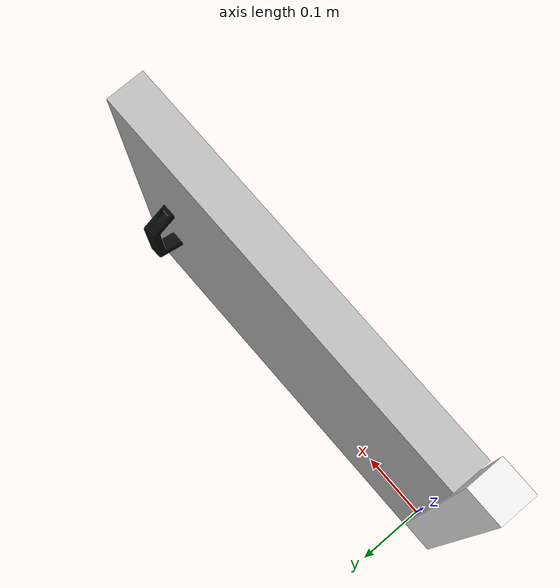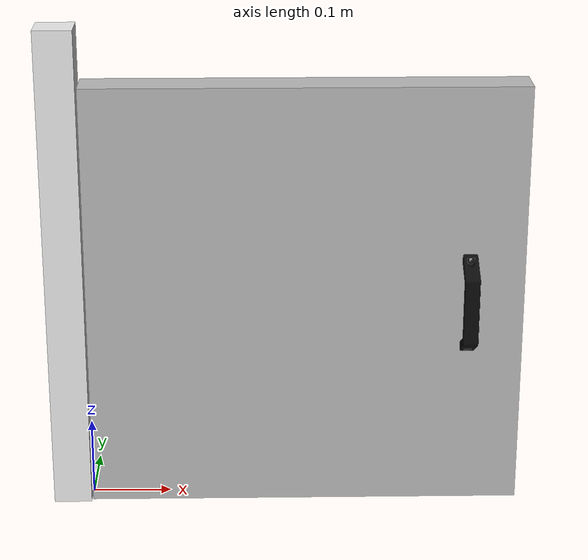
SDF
<?xml version='1.0'?>
<sdf version='1.7'>
  <model name='door-model'>
    <link name='door'>
      <inertial>
        <mass>20</mass>
        <inertia>
          <ixx>4.53808</ixx>
          <ixy>0</ixy>
          <ixz>0</ixz>
          <iyy>4.54003</iyy>
          <iyz>0</iyz>
          <izz>0.0512722</izz>
        </inertia>
        <pose>0 0 0 0 -0 0</pose>
      </inertial>
      <pose>0 0 0 0 -0 0</pose>
      <gravity>0</gravity>
      <self_collide>0</self_collide>
      <kinematic>0</kinematic>
      <enable_wind>0</enable_wind>
      <visual name='visual'>
        <pose>0 0 0 0 -0 0</pose>
        <geometry>
          <mesh>
            <uri>./Door.dae</uri>
            <scale>0.001 0.001 0.001</scale>
          </mesh>
        </geometry>
        <transparency>0</transparency>
        <cast_shadows>1</cast_shadows>
      </visual>
      <collision name='collision'>
        <laser_retro>0</laser_retro>
        <max_contacts>10</max_contacts>
        <pose>0 0 0 0 -0 0</pose>
        <geometry>
          <mesh>
            <uri>./Door.dae</uri>
            <scale>0.001 0.001 0.001</scale>
          </mesh>
        </geometry>
        <surface>
          <friction>
            <ode>
              <mu>1</mu>
              <mu2>1</mu2>
              <fdir1>0 0 0</fdir1>
              <slip1>0</slip1>
              <slip2>0</slip2>
            </ode>
            <torsional>
              <coefficient>1</coefficient>
              <patch_radius>0</patch_radius>
              <surface_radius>0</surface_radius>
              <use_patch_radius>1</use_patch_radius>
              <ode>
                <slip>0</slip>
              </ode>
            </torsional>
          </friction>
          <bounce>
            <restitution_coefficient>0</restitution_coefficient>
            <threshold>1e+06</threshold>
          </bounce>
          <contact>
            <collide_without_contact>0</collide_without_contact>
            <collide_without_contact_bitmask>1</collide_without_contact_bitmask>
            <collide_bitmask>1</collide_bitmask>
            <ode>
              <soft_cfm>0</soft_cfm>
              <soft_erp>0.2</soft_erp>
              <kp>1e+13</kp>
              <kd>1</kd>
              <max_vel>0.01</max_vel>
              <min_depth>0</min_depth>
            </ode>
            <bullet>
              <split_impulse>1</split_impulse>
              <split_impulse_penetration_threshold>-0.01</split_impulse_penetration_threshold>
              <soft_cfm>0</soft_cfm>
              <soft_erp>0.2</soft_erp>
              <kp>1e+13</kp>
              <kd>1</kd>
            </bullet>
          </contact>
        </surface>
      </collision>
    </link>
    <link name='pole'>
      <inertial>
        <mass>100</mass>
        <inertia>
          <ixx>0.001</ixx>
          <ixy>0.001</ixy>
          <ixz>0.001</ixz>
          <iyy>0.001</iyy>
          <iyz>0.001</iyz>
          <izz>0.001</izz>
        </inertia>
        <pose>0 0 0 0 -0 0</pose>
      </inertial>
      <pose>-0.02632 0 0.308096 0 -0 0</pose>
      <gravity>0</gravity>
      <self_collide>0</self_collide>
      <kinematic>1</kinematic>
      <enable_wind>0</enable_wind>
      <visual name='visual'>
        <pose>0 0 0 0 -0 0</pose>
        <geometry>
          <box>
            <size>0.048276 0.0462 0.625074</size>
          </box>
        </geometry>
        <material>
          <lighting>1</lighting>
          <script>
            <uri>file://media/materials/scripts/gazebo.material</uri>
            <name>Gazebo/White</name>
          </script>
          <ambient>1 1 1 1</ambient>
        </material>
        <transparency>0</transparency>
        <cast_shadows>1</cast_shadows>
      </visual>
      <collision name='collision'>
        <laser_retro>0</laser_retro>
        <max_contacts>10</max_contacts>
        <pose>0 0 0 0 -0 0</pose>
        <geometry>
          <box>
            <size>0.048 0.046201 0.625074</size>
          </box>
        </geometry>
        <surface>
          <friction>
            <ode>
              <mu>1</mu>
              <mu2>1</mu2>
              <fdir1>0 0 0</fdir1>
              <slip1>0</slip1>
              <slip2>0</slip2>
            </ode>
            <torsional>
              <coefficient>1</coefficient>
              <patch_radius>0</patch_radius>
              <surface_radius>0</surface_radius>
              <use_patch_radius>1</use_patch_radius>
              <ode>
                <slip>0</slip>
              </ode>
            </torsional>
          </friction>
          <bounce>
            <restitution_coefficient>0</restitution_coefficient>
            <threshold>1e+06</threshold>
          </bounce>
          <contact>
            <collide_without_contact>0</collide_without_contact>
            <collide_without_contact_bitmask>1</collide_without_contact_bitmask>
            <collide_bitmask>1</collide_bitmask>
            <ode>
              <soft_cfm>0</soft_cfm>
              <soft_erp>0.2</soft_erp>
              <kp>1e+13</kp>
              <kd>1</kd>
              <max_vel>0.01</max_vel>
              <min_depth>0</min_depth>
            </ode>
            <bullet>
              <split_impulse>1</split_impulse>
              <split_impulse_penetration_threshold>-0.01</split_impulse_penetration_threshold>
              <soft_cfm>0</soft_cfm>
              <soft_erp>0.2</soft_erp>
              <kp>1e+13</kp>
              <kd>1</kd>
            </bullet>
          </contact>
        </surface>
      </collision>
    </link>
    <joint name='hinge' type='revolute'>
      <parent>pole</parent>
      <child>door</child>
      <pose>0 0 0.3 0 -0 0</pose>
      <axis>
        <xyz>0 0 1</xyz>
        <limit>
          <lower>-1.74533</lower>
          <upper>1.74533</upper>
          <effort>3900</effort>
          <velocity>0.62</velocity>
        </limit>
        <dynamics>
          <spring_reference>0</spring_reference>
          <spring_stiffness>0</spring_stiffness>
          <damping>0.1</damping>
          <friction>0.1</friction>
        </dynamics>
      </axis>
      <physics>
        <ode>
          <limit>
            <cfm>0</cfm>
            <erp>0.2</erp>
          </limit>
          <suspension>
            <cfm>0</cfm>
            <erp>0.2</erp>
          </suspension>
        </ode>
      </physics>
    </joint>
    <static>0</static>
    <allow_auto_disable>1</allow_auto_disable>
  </model>
</sdf>
